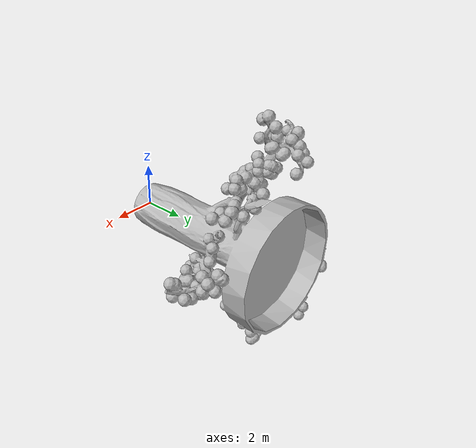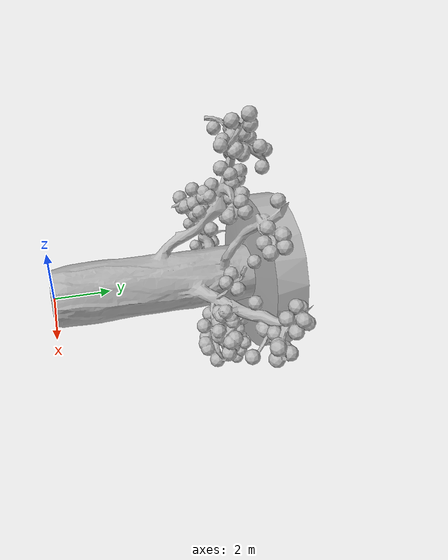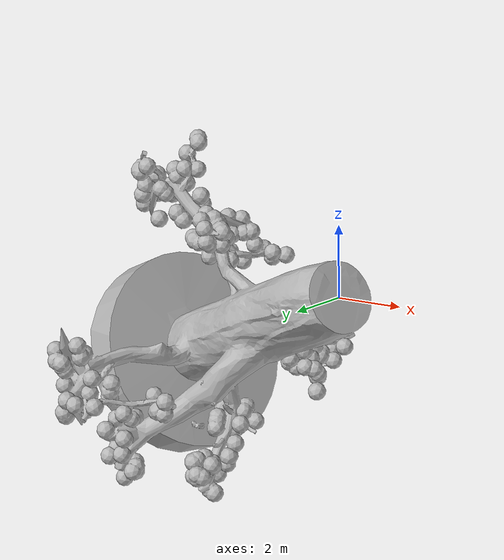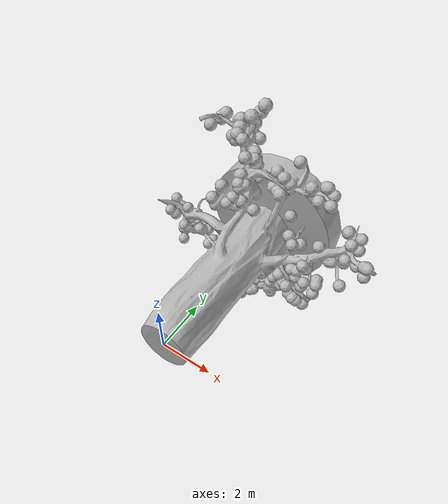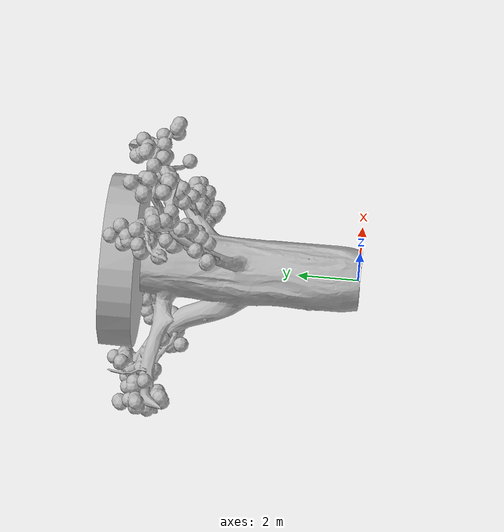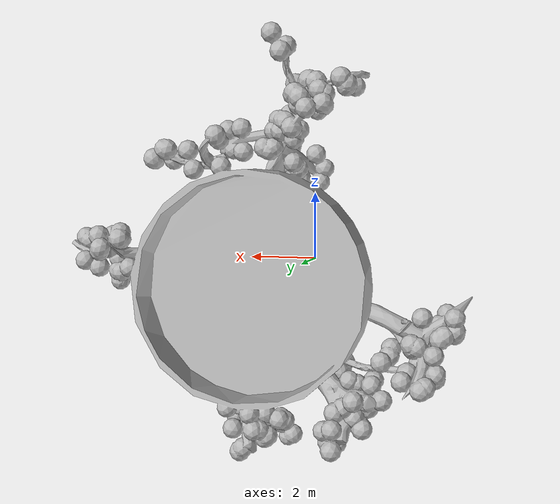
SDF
<?xml version="1.0"?>
<sdf version="1.8">
  <model name="homebase">
    <pose>0 0 0 0 0 0</pose>
    <static>true</static>
    <link name="body">
      <visual name="visual">
        <geometry>
          <mesh>
            <uri>visual.obj</uri>
          </mesh>
        </geometry>
      </visual>
      <collision name="collision">
        <geometry>
          <mesh>
            <uri>collision.obj</uri>
          </mesh>
        </geometry>
      </collision>

	</link>
  </model>
</sdf>
